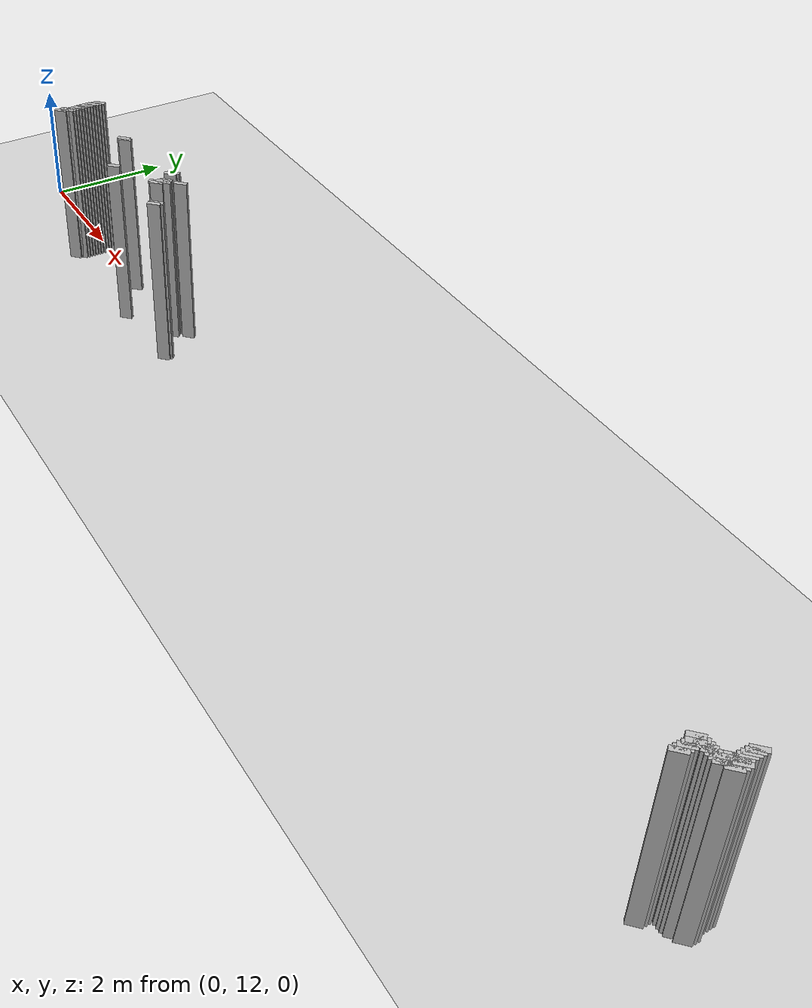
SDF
<sdf version="1.5">
 <world name="default">
  <include><uri>model://ground_plane</uri></include>
  <include><uri>model://sun</uri></include>
  <model name="grey_wall_1109">
   <static>1</static>
   <link name="link">
    <pose>5.050000000000001 12.100000000000001  1.4 0 0 -0.7853981633974483</pose>
    <collision name="collision">
     <geometry><box><size>0.07071067811865576 .2  2.8</size></box></geometry>
    </collision>
    <visual name="visual">
     <cast_shadows>0</cast_shadows>
     <geometry><box><size>0.07071067811865576 .2  2.8</size></box></geometry>
    </visual>
   </link>
  </model>
  <model name="grey_wall_1110">
   <static>1</static>
   <link name="link">
    <pose>17.400000000000002 12.100000000000001  1.4 0 0 -0.7853981633974838</pose>
    <collision name="collision">
     <geometry><box><size>0.07071067811865325 .2  2.8</size></box></geometry>
    </collision>
    <visual name="visual">
     <cast_shadows>0</cast_shadows>
     <geometry><box><size>0.07071067811865325 .2  2.8</size></box></geometry>
    </visual>
   </link>
  </model>
  <model name="grey_wall_1111">
   <static>1</static>
   <link name="link">
    <pose>2.3000000000000003 12.05  1.4 0 0 -0.7853981633974572</pose>
    <collision name="collision">
     <geometry><box><size>0.07071067811865513 .2  2.8</size></box></geometry>
    </collision>
    <visual name="visual">
     <cast_shadows>0</cast_shadows>
     <geometry><box><size>0.07071067811865513 .2  2.8</size></box></geometry>
    </visual>
   </link>
  </model>
  <model name="grey_wall_1112">
   <static>1</static>
   <link name="link">
    <pose>5.050000000000001 12.05  1.4 0 0 -0.7853981633974483</pose>
    <collision name="collision">
     <geometry><box><size>0.07071067811865576 .2  2.8</size></box></geometry>
    </collision>
    <visual name="visual">
     <cast_shadows>0</cast_shadows>
     <geometry><box><size>0.07071067811865576 .2  2.8</size></box></geometry>
    </visual>
   </link>
  </model>
  <model name="grey_wall_1113">
   <static>1</static>
   <link name="link">
    <pose>5.4 12.05  1.4 0 0 -0.7853981633974483</pose>
    <collision name="collision">
     <geometry><box><size>0.07071067811865576 .2  2.8</size></box></geometry>
    </collision>
    <visual name="visual">
     <cast_shadows>0</cast_shadows>
     <geometry><box><size>0.07071067811865576 .2  2.8</size></box></geometry>
    </visual>
   </link>
  </model>
  <model name="grey_wall_1114">
   <static>1</static>
   <link name="link">
    <pose>17.400000000000002 12.05  1.4 0 0 -0.7853981633974838</pose>
    <collision name="collision">
     <geometry><box><size>0.07071067811865325 .2  2.8</size></box></geometry>
    </collision>
    <visual name="visual">
     <cast_shadows>0</cast_shadows>
     <geometry><box><size>0.07071067811865325 .2  2.8</size></box></geometry>
    </visual>
   </link>
  </model>
  <model name="grey_wall_1115">
   <static>1</static>
   <link name="link">
    <pose>2.3000000000000003 12.0  1.4 0 0 -0.7853981633974572</pose>
    <collision name="collision">
     <geometry><box><size>0.07071067811865513 .2  2.8</size></box></geometry>
    </collision>
    <visual name="visual">
     <cast_shadows>0</cast_shadows>
     <geometry><box><size>0.07071067811865513 .2  2.8</size></box></geometry>
    </visual>
   </link>
  </model>
  <model name="grey_wall_1116">
   <static>1</static>
   <link name="link">
    <pose>17.400000000000002 12.0  1.4 0 0 -0.7853981633974838</pose>
    <collision name="collision">
     <geometry><box><size>0.07071067811865325 .2  2.8</size></box></geometry>
    </collision>
    <visual name="visual">
     <cast_shadows>0</cast_shadows>
     <geometry><box><size>0.07071067811865325 .2  2.8</size></box></geometry>
    </visual>
   </link>
  </model>
  <model name="grey_wall_1117">
   <static>1</static>
   <link name="link">
    <pose>2.3000000000000003 11.950000000000001  1.4 0 0 -0.7853981633974572</pose>
    <collision name="collision">
     <geometry><box><size>0.07071067811865513 .2  2.8</size></box></geometry>
    </collision>
    <visual name="visual">
     <cast_shadows>0</cast_shadows>
     <geometry><box><size>0.07071067811865513 .2  2.8</size></box></geometry>
    </visual>
   </link>
  </model>
  <model name="grey_wall_1118">
   <static>1</static>
   <link name="link">
    <pose>17.400000000000002 11.950000000000001  1.4 0 0 -0.7853981633974838</pose>
    <collision name="collision">
     <geometry><box><size>0.07071067811865325 .2  2.8</size></box></geometry>
    </collision>
    <visual name="visual">
     <cast_shadows>0</cast_shadows>
     <geometry><box><size>0.07071067811865325 .2  2.8</size></box></geometry>
    </visual>
   </link>
  </model>
  <model name="grey_wall_1119">
   <static>1</static>
   <link name="link">
    <pose>2.3000000000000003 11.9  1.4 0 0 -0.7853981633974572</pose>
    <collision name="collision">
     <geometry><box><size>0.07071067811865513 .2  2.8</size></box></geometry>
    </collision>
    <visual name="visual">
     <cast_shadows>0</cast_shadows>
     <geometry><box><size>0.07071067811865513 .2  2.8</size></box></geometry>
    </visual>
   </link>
  </model>
  <model name="grey_wall_1120">
   <static>1</static>
   <link name="link">
    <pose>3.6500000000000004 11.9  1.4 0 0 -0.7853981633974572</pose>
    <collision name="collision">
     <geometry><box><size>0.07071067811865513 .2  2.8</size></box></geometry>
    </collision>
    <visual name="visual">
     <cast_shadows>0</cast_shadows>
     <geometry><box><size>0.07071067811865513 .2  2.8</size></box></geometry>
    </visual>
   </link>
  </model>
  <model name="grey_wall_1121">
   <static>1</static>
   <link name="link">
    <pose>3.7 11.9  1.4 0 0 -0.7853981633974572</pose>
    <collision name="collision">
     <geometry><box><size>0.07071067811865513 .2  2.8</size></box></geometry>
    </collision>
    <visual name="visual">
     <cast_shadows>0</cast_shadows>
     <geometry><box><size>0.07071067811865513 .2  2.8</size></box></geometry>
    </visual>
   </link>
  </model>
  <model name="grey_wall_1122">
   <static>1</static>
   <link name="link">
    <pose>5.2 11.9  1.4 0 0 -0.7853981633974483</pose>
    <collision name="collision">
     <geometry><box><size>0.07071067811865576 .2  2.8</size></box></geometry>
    </collision>
    <visual name="visual">
     <cast_shadows>0</cast_shadows>
     <geometry><box><size>0.07071067811865576 .2  2.8</size></box></geometry>
    </visual>
   </link>
  </model>
  <model name="grey_wall_1123">
   <static>1</static>
   <link name="link">
    <pose>17.400000000000002 11.9  1.4 0 0 -0.7853981633974838</pose>
    <collision name="collision">
     <geometry><box><size>0.07071067811865325 .2  2.8</size></box></geometry>
    </collision>
    <visual name="visual">
     <cast_shadows>0</cast_shadows>
     <geometry><box><size>0.07071067811865325 .2  2.8</size></box></geometry>
    </visual>
   </link>
  </model>
  <model name="grey_wall_1124">
   <static>1</static>
   <link name="link">
    <pose>2.3000000000000003 11.850000000000001  1.4 0 0 -0.7853981633974572</pose>
    <collision name="collision">
     <geometry><box><size>0.07071067811865513 .2  2.8</size></box></geometry>
    </collision>
    <visual name="visual">
     <cast_shadows>0</cast_shadows>
     <geometry><box><size>0.07071067811865513 .2  2.8</size></box></geometry>
    </visual>
   </link>
  </model>
  <model name="grey_wall_1125">
   <static>1</static>
   <link name="link">
    <pose>5.2 11.850000000000001  1.4 0 0 -0.7853981633974483</pose>
    <collision name="collision">
     <geometry><box><size>0.07071067811865576 .2  2.8</size></box></geometry>
    </collision>
    <visual name="visual">
     <cast_shadows>0</cast_shadows>
     <geometry><box><size>0.07071067811865576 .2  2.8</size></box></geometry>
    </visual>
   </link>
  </model>
  <model name="grey_wall_1126">
   <static>1</static>
   <link name="link">
    <pose>5.25 11.850000000000001  1.4 0 0 -0.7853981633974483</pose>
    <collision name="collision">
     <geometry><box><size>0.07071067811865576 .2  2.8</size></box></geometry>
    </collision>
    <visual name="visual">
     <cast_shadows>0</cast_shadows>
     <geometry><box><size>0.07071067811865576 .2  2.8</size></box></geometry>
    </visual>
   </link>
  </model>
  <model name="grey_wall_1127">
   <static>1</static>
   <link name="link">
    <pose>17.400000000000002 11.850000000000001  1.4 0 0 -0.7853981633974838</pose>
    <collision name="collision">
     <geometry><box><size>0.07071067811865325 .2  2.8</size></box></geometry>
    </collision>
    <visual name="visual">
     <cast_shadows>0</cast_shadows>
     <geometry><box><size>0.07071067811865325 .2  2.8</size></box></geometry>
    </visual>
   </link>
  </model>
  <model name="grey_wall_1128">
   <static>1</static>
   <link name="link">
    <pose>17.45 11.850000000000001  1.4 0 0 -0.7853981633974838</pose>
    <collision name="collision">
     <geometry><box><size>0.07071067811865325 .2  2.8</size></box></geometry>
    </collision>
    <visual name="visual">
     <cast_shadows>0</cast_shadows>
     <geometry><box><size>0.07071067811865325 .2  2.8</size></box></geometry>
    </visual>
   </link>
  </model>
  <model name="grey_wall_1129">
   <static>1</static>
   <link name="link">
    <pose>2.3000000000000003 11.8  1.4 0 0 -0.7853981633974572</pose>
    <collision name="collision">
     <geometry><box><size>0.07071067811865513 .2  2.8</size></box></geometry>
    </collision>
    <visual name="visual">
     <cast_shadows>0</cast_shadows>
     <geometry><box><size>0.07071067811865513 .2  2.8</size></box></geometry>
    </visual>
   </link>
  </model>
  <model name="grey_wall_1130">
   <static>1</static>
   <link name="link">
    <pose>17.3 11.8  1.4 0 0 -0.7853981633974838</pose>
    <collision name="collision">
     <geometry><box><size>0.07071067811865325 .2  2.8</size></box></geometry>
    </collision>
    <visual name="visual">
     <cast_shadows>0</cast_shadows>
     <geometry><box><size>0.07071067811865325 .2  2.8</size></box></geometry>
    </visual>
   </link>
  </model>
  <model name="grey_wall_1131">
   <static>1</static>
   <link name="link">
    <pose>17.45 11.8  1.4 0 0 -0.7853981633974838</pose>
    <collision name="collision">
     <geometry><box><size>0.07071067811865325 .2  2.8</size></box></geometry>
    </collision>
    <visual name="visual">
     <cast_shadows>0</cast_shadows>
     <geometry><box><size>0.07071067811865325 .2  2.8</size></box></geometry>
    </visual>
   </link>
  </model>
  <model name="grey_wall_1132">
   <static>1</static>
   <link name="link">
    <pose>2.3000000000000003 11.75  1.4 0 0 -0.7853981633974572</pose>
    <collision name="collision">
     <geometry><box><size>0.07071067811865513 .2  2.8</size></box></geometry>
    </collision>
    <visual name="visual">
     <cast_shadows>0</cast_shadows>
     <geometry><box><size>0.07071067811865513 .2  2.8</size></box></geometry>
    </visual>
   </link>
  </model>
  <model name="grey_wall_1133">
   <static>1</static>
   <link name="link">
    <pose>5.15 11.75  1.4 0 0 -0.7853981633974483</pose>
    <collision name="collision">
     <geometry><box><size>0.07071067811865576 .2  2.8</size></box></geometry>
    </collision>
    <visual name="visual">
     <cast_shadows>0</cast_shadows>
     <geometry><box><size>0.07071067811865576 .2  2.8</size></box></geometry>
    </visual>
   </link>
  </model>
  <model name="grey_wall_1134">
   <static>1</static>
   <link name="link">
    <pose>5.2 11.75  1.4 0 0 -0.7853981633974483</pose>
    <collision name="collision">
     <geometry><box><size>0.07071067811865576 .2  2.8</size></box></geometry>
    </collision>
    <visual name="visual">
     <cast_shadows>0</cast_shadows>
     <geometry><box><size>0.07071067811865576 .2  2.8</size></box></geometry>
    </visual>
   </link>
  </model>
  <model name="grey_wall_1135">
   <static>1</static>
   <link name="link">
    <pose>17.35 11.75  1.4 0 0 -0.7853981633974838</pose>
    <collision name="collision">
     <geometry><box><size>0.07071067811865325 .2  2.8</size></box></geometry>
    </collision>
    <visual name="visual">
     <cast_shadows>0</cast_shadows>
     <geometry><box><size>0.07071067811865325 .2  2.8</size></box></geometry>
    </visual>
   </link>
  </model>
  <model name="grey_wall_1136">
   <static>1</static>
   <link name="link">
    <pose>17.400000000000002 11.75  1.4 0 0 -0.7853981633974838</pose>
    <collision name="collision">
     <geometry><box><size>0.07071067811865325 .2  2.8</size></box></geometry>
    </collision>
    <visual name="visual">
     <cast_shadows>0</cast_shadows>
     <geometry><box><size>0.07071067811865325 .2  2.8</size></box></geometry>
    </visual>
   </link>
  </model>
  <model name="grey_wall_1137">
   <static>1</static>
   <link name="link">
    <pose>17.45 11.75  1.4 0 0 -0.7853981633974838</pose>
    <collision name="collision">
     <geometry><box><size>0.07071067811865325 .2  2.8</size></box></geometry>
    </collision>
    <visual name="visual">
     <cast_shadows>0</cast_shadows>
     <geometry><box><size>0.07071067811865325 .2  2.8</size></box></geometry>
    </visual>
   </link>
  </model>
  <model name="grey_wall_1138">
   <static>1</static>
   <link name="link">
    <pose>2.3000000000000003 11.700000000000001  1.4 0 0 -0.7853981633974572</pose>
    <collision name="collision">
     <geometry><box><size>0.07071067811865513 .2  2.8</size></box></geometry>
    </collision>
    <visual name="visual">
     <cast_shadows>0</cast_shadows>
     <geometry><box><size>0.07071067811865513 .2  2.8</size></box></geometry>
    </visual>
   </link>
  </model>
  <model name="grey_wall_1139">
   <static>1</static>
   <link name="link">
    <pose>17.0 11.700000000000001  1.4 0 0 -0.7853981633974838</pose>
    <collision name="collision">
     <geometry><box><size>0.07071067811865325 .2  2.8</size></box></geometry>
    </collision>
    <visual name="visual">
     <cast_shadows>0</cast_shadows>
     <geometry><box><size>0.07071067811865325 .2  2.8</size></box></geometry>
    </visual>
   </link>
  </model>
  <model name="grey_wall_1140">
   <static>1</static>
   <link name="link">
    <pose>17.05 11.700000000000001  1.4 0 0 -0.7853981633974838</pose>
    <collision name="collision">
     <geometry><box><size>0.07071067811865325 .2  2.8</size></box></geometry>
    </collision>
    <visual name="visual">
     <cast_shadows>0</cast_shadows>
     <geometry><box><size>0.07071067811865325 .2  2.8</size></box></geometry>
    </visual>
   </link>
  </model>
  <model name="grey_wall_1141">
   <static>1</static>
   <link name="link">
    <pose>17.1 11.700000000000001  1.4 0 0 -0.7853981633974838</pose>
    <collision name="collision">
     <geometry><box><size>0.07071067811865325 .2  2.8</size></box></geometry>
    </collision>
    <visual name="visual">
     <cast_shadows>0</cast_shadows>
     <geometry><box><size>0.07071067811865325 .2  2.8</size></box></geometry>
    </visual>
   </link>
  </model>
  <model name="grey_wall_1142">
   <static>1</static>
   <link name="link">
    <pose>17.150000000000002 11.700000000000001  1.4 0 0 -0.7853981633974838</pose>
    <collision name="collision">
     <geometry><box><size>0.07071067811865325 .2  2.8</size></box></geometry>
    </collision>
    <visual name="visual">
     <cast_shadows>0</cast_shadows>
     <geometry><box><size>0.07071067811865325 .2  2.8</size></box></geometry>
    </visual>
   </link>
  </model>
  <model name="grey_wall_1143">
   <static>1</static>
   <link name="link">
    <pose>17.2 11.700000000000001  1.4 0 0 -0.7853981633974838</pose>
    <collision name="collision">
     <geometry><box><size>0.07071067811865325 .2  2.8</size></box></geometry>
    </collision>
    <visual name="visual">
     <cast_shadows>0</cast_shadows>
     <geometry><box><size>0.07071067811865325 .2  2.8</size></box></geometry>
    </visual>
   </link>
  </model>
  <model name="grey_wall_1144">
   <static>1</static>
   <link name="link">
    <pose>17.25 11.700000000000001  1.4 0 0 -0.7853981633974838</pose>
    <collision name="collision">
     <geometry><box><size>0.07071067811865325 .2  2.8</size></box></geometry>
    </collision>
    <visual name="visual">
     <cast_shadows>0</cast_shadows>
     <geometry><box><size>0.07071067811865325 .2  2.8</size></box></geometry>
    </visual>
   </link>
  </model>
  <model name="grey_wall_1145">
   <static>1</static>
   <link name="link">
    <pose>17.3 11.700000000000001  1.4 0 0 -0.7853981633974838</pose>
    <collision name="collision">
     <geometry><box><size>0.07071067811865325 .2  2.8</size></box></geometry>
    </collision>
    <visual name="visual">
     <cast_shadows>0</cast_shadows>
     <geometry><box><size>0.07071067811865325 .2  2.8</size></box></geometry>
    </visual>
   </link>
  </model>
  <model name="grey_wall_1146">
   <static>1</static>
   <link name="link">
    <pose>17.35 11.700000000000001  1.4 0 0 -0.7853981633974838</pose>
    <collision name="collision">
     <geometry><box><size>0.07071067811865325 .2  2.8</size></box></geometry>
    </collision>
    <visual name="visual">
     <cast_shadows>0</cast_shadows>
     <geometry><box><size>0.07071067811865325 .2  2.8</size></box></geometry>
    </visual>
   </link>
  </model>
  <model name="grey_wall_1147">
   <static>1</static>
   <link name="link">
    <pose>2.3000000000000003 11.65  1.4 0 0 -0.7853981633974572</pose>
    <collision name="collision">
     <geometry><box><size>0.07071067811865513 .2  2.8</size></box></geometry>
    </collision>
    <visual name="visual">
     <cast_shadows>0</cast_shadows>
     <geometry><box><size>0.07071067811865513 .2  2.8</size></box></geometry>
    </visual>
   </link>
  </model>
  <model name="grey_wall_1148">
   <static>1</static>
   <link name="link">
    <pose>17.05 11.65  1.4 0 0 -0.7853981633974838</pose>
    <collision name="collision">
     <geometry><box><size>0.07071067811865325 .2  2.8</size></box></geometry>
    </collision>
    <visual name="visual">
     <cast_shadows>0</cast_shadows>
     <geometry><box><size>0.07071067811865325 .2  2.8</size></box></geometry>
    </visual>
   </link>
  </model>
  <model name="grey_wall_1149">
   <static>1</static>
   <link name="link">
    <pose>2.3000000000000003 11.600000000000001  1.4 0 0 -0.7853981633974572</pose>
    <collision name="collision">
     <geometry><box><size>0.07071067811865513 .2  2.8</size></box></geometry>
    </collision>
    <visual name="visual">
     <cast_shadows>0</cast_shadows>
     <geometry><box><size>0.07071067811865513 .2  2.8</size></box></geometry>
    </visual>
   </link>
  </model>
  <model name="grey_wall_1150">
   <static>1</static>
   <link name="link">
    <pose>17.05 11.600000000000001  1.4 0 0 -0.7853981633974838</pose>
    <collision name="collision">
     <geometry><box><size>0.07071067811865325 .2  2.8</size></box></geometry>
    </collision>
    <visual name="visual">
     <cast_shadows>0</cast_shadows>
     <geometry><box><size>0.07071067811865325 .2  2.8</size></box></geometry>
    </visual>
   </link>
  </model>
  <model name="grey_wall_1151">
   <static>1</static>
   <link name="link">
    <pose>2.3000000000000003 11.55  1.4 0 0 -0.7853981633974572</pose>
    <collision name="collision">
     <geometry><box><size>0.07071067811865513 .2  2.8</size></box></geometry>
    </collision>
    <visual name="visual">
     <cast_shadows>0</cast_shadows>
     <geometry><box><size>0.07071067811865513 .2  2.8</size></box></geometry>
    </visual>
   </link>
  </model>
  <model name="grey_wall_1152">
   <static>1</static>
   <link name="link">
    <pose>17.05 11.55  1.4 0 0 -0.7853981633974838</pose>
    <collision name="collision">
     <geometry><box><size>0.07071067811865325 .2  2.8</size></box></geometry>
    </collision>
    <visual name="visual">
     <cast_shadows>0</cast_shadows>
     <geometry><box><size>0.07071067811865325 .2  2.8</size></box></geometry>
    </visual>
   </link>
  </model>
  <model name="grey_wall_1153">
   <static>1</static>
   <link name="link">
    <pose>2.25 11.5  1.4 0 0 -0.7853981633974572</pose>
    <collision name="collision">
     <geometry><box><size>0.07071067811865513 .2  2.8</size></box></geometry>
    </collision>
    <visual name="visual">
     <cast_shadows>0</cast_shadows>
     <geometry><box><size>0.07071067811865513 .2  2.8</size></box></geometry>
    </visual>
   </link>
  </model>
  <model name="grey_wall_1154">
   <static>1</static>
   <link name="link">
    <pose>2.3000000000000003 11.5  1.4 0 0 -0.7853981633974572</pose>
    <collision name="collision">
     <geometry><box><size>0.07071067811865513 .2  2.8</size></box></geometry>
    </collision>
    <visual name="visual">
     <cast_shadows>0</cast_shadows>
     <geometry><box><size>0.07071067811865513 .2  2.8</size></box></geometry>
    </visual>
   </link>
  </model>
  <model name="grey_wall_1155">
   <static>1</static>
   <link name="link">
    <pose>5.75 11.5  1.4 0 0 -0.7853981633974483</pose>
    <collision name="collision">
     <geometry><box><size>0.07071067811865576 .2  2.8</size></box></geometry>
    </collision>
    <visual name="visual">
     <cast_shadows>0</cast_shadows>
     <geometry><box><size>0.07071067811865576 .2  2.8</size></box></geometry>
    </visual>
   </link>
  </model>
  <model name="grey_wall_1156">
   <static>1</static>
   <link name="link">
    <pose>17.05 11.5  1.4 0 0 -0.7853981633974838</pose>
    <collision name="collision">
     <geometry><box><size>0.07071067811865325 .2  2.8</size></box></geometry>
    </collision>
    <visual name="visual">
     <cast_shadows>0</cast_shadows>
     <geometry><box><size>0.07071067811865325 .2  2.8</size></box></geometry>
    </visual>
   </link>
  </model>
  <model name="grey_wall_1157">
   <static>1</static>
   <link name="link">
    <pose>2.25 11.450000000000001  1.4 0 0 -0.7853981633974572</pose>
    <collision name="collision">
     <geometry><box><size>0.07071067811865513 .2  2.8</size></box></geometry>
    </collision>
    <visual name="visual">
     <cast_shadows>0</cast_shadows>
     <geometry><box><size>0.07071067811865513 .2  2.8</size></box></geometry>
    </visual>
   </link>
  </model>
  <model name="grey_wall_1158">
   <static>1</static>
   <link name="link">
    <pose>5.75 11.450000000000001  1.4 0 0 -0.7853981633974483</pose>
    <collision name="collision">
     <geometry><box><size>0.07071067811865576 .2  2.8</size></box></geometry>
    </collision>
    <visual name="visual">
     <cast_shadows>0</cast_shadows>
     <geometry><box><size>0.07071067811865576 .2  2.8</size></box></geometry>
    </visual>
   </link>
  </model>
  <model name="grey_wall_1159">
   <static>1</static>
   <link name="link">
    <pose>17.05 11.450000000000001  1.4 0 0 -0.7853981633974838</pose>
    <collision name="collision">
     <geometry><box><size>0.07071067811865325 .2  2.8</size></box></geometry>
    </collision>
    <visual name="visual">
     <cast_shadows>0</cast_shadows>
     <geometry><box><size>0.07071067811865325 .2  2.8</size></box></geometry>
    </visual>
   </link>
  </model>
  <model name="grey_wall_1160">
   <static>1</static>
   <link name="link">
    <pose>2.25 11.4  1.4 0 0 -0.7853981633974572</pose>
    <collision name="collision">
     <geometry><box><size>0.07071067811865513 .2  2.8</size></box></geometry>
    </collision>
    <visual name="visual">
     <cast_shadows>0</cast_shadows>
     <geometry><box><size>0.07071067811865513 .2  2.8</size></box></geometry>
    </visual>
   </link>
  </model>
  <model name="grey_wall_1161">
   <static>1</static>
   <link name="link">
    <pose>4.4 11.4  1.4 0 0 -0.7853981633974483</pose>
    <collision name="collision">
     <geometry><box><size>0.07071067811865576 .2  2.8</size></box></geometry>
    </collision>
    <visual name="visual">
     <cast_shadows>0</cast_shadows>
     <geometry><box><size>0.07071067811865576 .2  2.8</size></box></geometry>
    </visual>
   </link>
  </model>
 </world>
</sdf>
